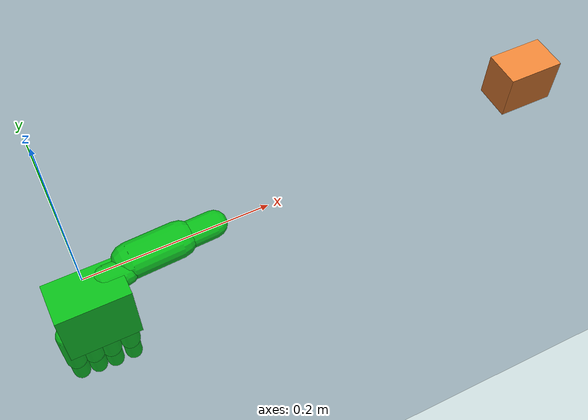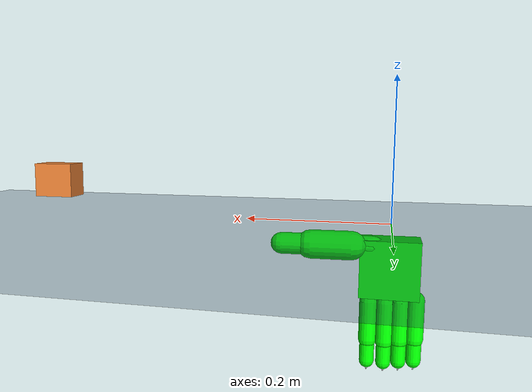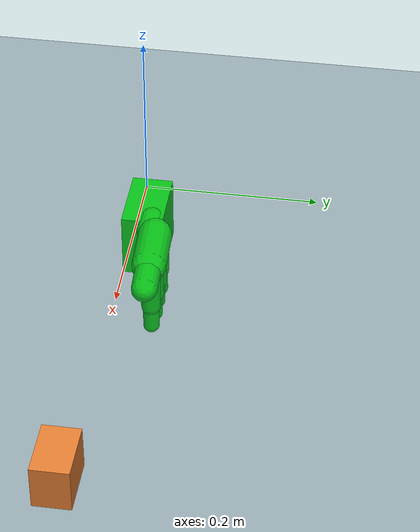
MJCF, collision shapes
<!-- Grasp scene: Shadow Hand + block object (60x40x50 mm, paper default) -->
<mujoco model="dexterous_slip_scene">
  <include file="../../third_party/mujoco_menagerie/shadow_hand/right_hand.xml"/>

  <statistic center="0.3 0 0.4" extent="0.8"/>

  <visual>
    <headlight diffuse="0.6 0.6 0.6" ambient="0.3 0.3 0.3" specular="0 0 0"/>
    <rgba haze="0.15 0.25 0.35 1"/>
    <global azimuth="120" elevation="-20"/>
  </visual>

  <asset>
    <texture type="skybox" builtin="gradient" rgb1="0.3 0.5 0.7" rgb2="0 0 0" width="512" height="3072"/>
    <texture type="2d" name="groundplane" builtin="checker" mark="edge" rgb1="0.2 0.3 0.4" rgb2="0.1 0.2 0.3"
      markrgb="0.8 0.8 0.8" width="300" height="300"/>
    <material name="groundplane" texture="groundplane" texuniform="true" texrepeat="5 5" reflectance="0.2"/>
    <material name="block_mat" rgba="0.9 0.5 0.2 1"/>
  </asset>

  <worldbody>
    <light pos="0 0 1.5" dir="0 0 -1" directional="true"/>
    <geom name="floor" size="0 0 0.05" type="plane" material="groundplane"/>

    <!-- 60x40x50 mm block, mass 0.5 kg (paper mid-range) -->
    <body name="grasp_block" pos="0.5 0 0.05">
      <freejoint name="block_free"/>
      <geom name="block" type="box" size="0.03 0.02 0.025" mass="0.5" material="block_mat"
            friction="1.0 0.005 0.0001" condim="4"/>
    </body>
  </worldbody>
</mujoco>

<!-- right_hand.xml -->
<mujoco model="xhand_right">
  <compiler angle="radian" meshdir="meshes/" />

  <default>
    <!-- disable all contacts and use explicit collision pairs -->
    <geom density="800" condim="1" contype="0" conaffinity="0" />
    <!-- with this setting, the response time is around 1s -->
    <position kp="300" dampratio="1.0" inheritrange="1" />
    <joint damping="0.0" armature="1.0" frictionloss="0.0" />
    <site size="0.005" type="sphere" rgba="1 0 0 1" group="3" />
  </default>

  <asset>
    <texture type="skybox" builtin="gradient" rgb1="1.0 1.0 1.0" rgb2="1.0 1.0 1.0" width="512"
      height="3072" />
    <texture type="2d" name="right_groundplane" builtin="checker" mark="edge" rgb1="0.2 0.3 0.4"
      rgb2="0.1 0.2 0.3"
      markrgb="0.8 0.8 0.8" width="300" height="300" />
    <material name="right_groundplane" texture="right_groundplane" texuniform="true"
      texrepeat="5 5"
      reflectance="0.2" />
    <mesh name="right_hand_link" content_type="model/stl" file="right_hand_link.STL" />
    <mesh name="right_hand_thumb_bend_link" content_type="model/stl"
      file="right_hand_thumb_bend_link.STL" />
    <mesh name="right_hand_thumb_rota_link1" content_type="model/stl"
      file="right_hand_thumb_rota_link1.STL" />
    <mesh name="right_hand_thumb_rota_link2" content_type="model/stl"
      file="right_hand_thumb_rota_link2.STL" />
    <mesh name="right_hand_index_bend_link" content_type="model/stl"
      file="right_hand_index_bend_link.STL" />
    <mesh name="right_hand_index_rota_link1" content_type="model/stl"
      file="right_hand_index_rota_link1.STL" />
    <mesh name="right_hand_index_rota_link2" content_type="model/stl"
      file="right_hand_index_rota_link2.STL" />
    <mesh name="right_hand_mid_link1" content_type="model/stl" file="right_hand_mid_link1.STL" />
    <mesh name="right_hand_mid_link2" content_type="model/stl" file="right_hand_mid_link2.STL" />
    <mesh name="right_hand_ring_link1" content_type="model/stl" file="right_hand_ring_link1.STL" />
    <mesh name="right_hand_ring_link2" content_type="model/stl" file="right_hand_ring_link2.STL" />
    <mesh name="right_hand_pinky_link1" content_type="model/stl" file="right_hand_pinky_link1.STL" />
    <mesh name="right_hand_pinky_link2" content_type="model/stl" file="right_hand_pinky_link2.STL" />
  </asset>

  <worldbody>
    <body name="R_forearm_ty_link">
      <camera name="right_track" pos="-0.868 -0.348 -0.175"
        xyaxes="-0.037 0.999 -0.000 -0.011 -0.000 1.000" />
      <inertial pos="0 0 0" mass="0.1" diaginertia="0.01 0.01 0.01" />
      <joint name="R_forearm_tx_link_joint" pos="0 0 0" axis="1 0 0" type="slide" range="-5 5" />
      <body name="R_forearm_tz_link">
        <inertial pos="0 0 0" mass="0.1" diaginertia="0.01 0.01 0.01" />
        <joint name="R_forearm_ty_link_joint" pos="0 0 0" axis="0 1 0" type="slide" range="-5 5" />
        <body name="R_forearm_roll_link">
          <inertial pos="0 0 0" mass="0.1" diaginertia="0.01 0.01 0.01" />
          <joint name="R_forearm_tz_link_joint" pos="0 0 0" axis="0 0 1" type="slide" range="-5 5" />
          <body name="R_forearm_pitch_link">
            <inertial pos="0 0 0" mass="0.1" diaginertia="0.01 0.01 0.01" />
            <joint name="R_forearm_roll_link_joint" pos="0 0 0" axis="0 0 1" range="-6.2 6.2" />
            <body name="R_forearm_yaw_link">
              <inertial pos="0 0 0" mass="0.1" diaginertia="0.01 0.01 0.01" />
              <joint name="R_forearm_pitch_link_joint" pos="0 0 0" axis="1 0 0" range="-6.2 6.2" />
              <body name="right_hand_link">
                <inertial pos="-0.0071397 0.00342244 -0.0584807"
                  quat="0.688453 0.098553 0.0886255 0.713068" mass="0.530025"
                  diaginertia="0.00067782 0.000491189 0.000335821" />
                <joint name="R_forearm_yaw_link_joint" pos="0 0 0" axis="0 -1 0" range="-6.2 6.2" />
                <geom name="right_hand_link_visual" type="mesh" contype="0" conaffinity="0"
                  group="1" density="0" rgba="0.792157 0.819608 0.933333 1" mesh="right_hand_link" />
                <geom name="collision_hand_right_palm_0" type="box" size="0.04 0.024 0.04"
                  pos="0 0 -0.06"
                  rgba="0 1 0 1" group="3" />
                <site name="right_palm" pos="0 0 0" type="box" size="0.01 0.02 0.03" quat="0 1 1 0" />
                <body name="right_hand_thumb_bend_link" pos="0.0228 0.0095 -0.0305">
                  <inertial pos="0.0145291 -0.000901303 -0.000127926"
                    quat="0.0288921 0.68936 0.0166971 0.72365" mass="0.00985529"
                    diaginertia="1.30647e-06 1.29142e-06 5.40953e-07" />
                  <joint name="right_hand_thumb_bend_joint" pos="0 0 0" axis="0 0 1" range="0 1.83" />
                  <geom name="right_thumb_bend_visual" type="mesh" contype="0" conaffinity="0"
                    group="1" density="0" rgba="0.890196 0.890196 0.913725 1"
                    mesh="right_hand_thumb_bend_link" />
                  <geom name="collision_hand_right_thumb_2" type="capsule" size="0.015"
                    fromto="0 0 0 0.02 0 0"
                    rgba="0 1 0 1" group="3" />
                  <body name="right_hand_thumb_rota_link1" pos="0.028599 0.0083177 0.00178"
                    quat="0.99124 0.130499 0.00265603 0.0201745">
                    <inertial pos="0.0279237 -0.000127603 -0.000272577"
                      quat="-0.0989965 0.703671 0.0850598 0.698435" mass="0.153265"
                      diaginertia="5.62327e-05 4.89801e-05 2.23924e-05" />
                    <joint name="right_hand_thumb_rota_joint1" pos="0 0 0" axis="0 1 0"
                      range="-1.05 1.57" />
                    <geom name="right_thumb_rota1_visual" type="mesh" contype="0" conaffinity="0"
                      group="1" density="0" rgba="1 1 1 1" mesh="right_hand_thumb_rota_link1" />
                    <geom name="collision_hand_right_thumb_1" type="capsule" size="0.02"
                      fromto="0 0 0 0.055 0 0" rgba="0 1 0 1"
                      group="3" />
                    <body name="right_hand_thumb_rota_link2" pos="0.0553 0 0">
                      <inertial pos="0.0224697 -0.000691342 0.00302232"
                        quat="-0.0604029 0.715612 0.0198067 0.695599" mass="0.0374004"
                        diaginertia="9.5465e-06 8.27017e-06 3.92137e-06" />
                      <joint name="right_hand_thumb_rota_joint2" pos="0 0 0" axis="0 1 0"
                        range="-0.175 1.83" />
                      <geom name="right_thumb_rota2_visual" type="mesh" contype="0" conaffinity="0"
                        group="1" density="0" rgba="0.792157 0.819608 0.933333 1"
                        mesh="right_hand_thumb_rota_link2" />
                      <geom name="collision_hand_right_thumb_0" type="capsule" size="0.015"
                        fromto="0 0 0 0.04 0 0"
                        rgba="0 1 0 1"
                        group="3" />

                      <geom size="0.001" pos="0.0504025 0 0" contype="0" conaffinity="0" group="1"
                        density="0" rgba="0.698039 0.698039 0.698039 1" />
                      <site name="right_thumb_tip" pos="0.04 0 -0.012" />
                      <site name="track_hand_right_thumb_tip" pos="0.04 0 -0.012" />
                      <site name="trace_hand_right_thumb_tip" pos="0.04 0 -0.012" />
                    </body>
                  </body>
                </body>
                <body name="right_hand_index_bend_link" pos="0.0265 0.0065 -0.0899">
                  <inertial pos="8.08449e-05 0.000675884 0.00420851"
                    quat="0.999802 -0.0189928 -0.00582288 0.000998418" mass="0.0677836"
                    diaginertia="2.16592e-05 2.09943e-05 3.36803e-06" />
                  <joint name="right_hand_index_bend_joint" pos="0 0 0" axis="0 1 0"
                    range="-0.175 0.175" />
                  <geom name="right_index_bend_visual" type="mesh" contype="0" conaffinity="0"
                    group="1" density="0" rgba="0.439216 0.439216 0.439216 1"
                    mesh="right_hand_index_bend_link" />
                  <body name="right_hand_index_rota_link1" pos="0 0 -0.0178">
                    <inertial pos="-0.00013977 -0.000800517 -0.0356039"
                      quat="0.999865 0.00809183 -0.0131314 0.00566198" mass="0.0630216"
                      diaginertia="2.05301e-05 1.92461e-05 4.135e-06" />
                    <joint name="right_hand_index_joint1" pos="0 0 0" axis="1 0 0" range="0 1.92"
                    />
                    <geom name="right_index_rota1_visual" type="mesh" contype="0" conaffinity="0"
                      group="1" density="0" rgba="1 1 1 1" mesh="right_hand_index_rota_link1" />
                    <geom name="collision_hand_right_index_1" type="capsule" size="0.012"
                      fromto="0 0 0 0 0 -0.055" rgba="0 1 0 1" group="3" />
                    <body name="right_hand_index_rota_link2" pos="0 0 -0.0558">
                      <inertial pos="-0.000338569 1.93676e-05 -0.0231329"
                        quat="0.935384 0.00588977 -0.0260883 0.35262" mass="0.0179923"
                        diaginertia="3.02409e-06 3.01968e-06 9.82703e-07" />
                      <joint name="right_hand_index_joint2" pos="0 0 0" axis="1 0 0" range="0 1.92"
                      />
                      <geom name="right_index_rota2_visual" type="mesh" contype="0" conaffinity="0"
                        group="1" density="0" rgba="0.866667 0.866667 0.890196 1"
                        mesh="right_hand_index_rota_link2" />
                      <geom name="collision_hand_right_index_0" type="capsule" size="0.01"
                        fromto="0 0 0 0 0 -0.03" rgba="0 1 0 1" group="3" />
                      <geom size="0.001" pos="0 0 -0.0425" contype="0" conaffinity="0" group="1"
                        density="0" rgba="0.698039 0.698039 0.698039 1" />
                      <site name="right_index_tip" pos="0 0.004 -0.027" />
                      <site name="track_hand_right_index_tip" pos="0 0.004 -0.027" />
                      <site name="trace_hand_right_index_tip" pos="0 0.004 -0.027" />
                    </body>
                  </body>
                </body>
                <body name="right_hand_mid_link1" pos="0.004 0.0065 -0.1082">
                  <inertial pos="-0.000139769 -0.000800517 -0.0356039"
                    quat="0.999865 0.00809181 -0.0131314 0.00566199" mass="0.0630216"
                    diaginertia="2.05301e-05 1.92461e-05 4.135e-06" />
                  <joint name="right_hand_mid_joint1" pos="0 0 0" axis="1 0 0" range="0 1.92"
                  />
                  <geom name="right_middle_link1_visual" type="mesh" contype="0" conaffinity="0"
                    group="1" density="0" rgba="1 1 1 1" mesh="right_hand_mid_link1" />
                  <geom name="collision_hand_right_middle_1" type="capsule" size="0.012"
                    fromto="0 0 0 0 0 -0.055" rgba="0 1 0 1" group="3" />
                  <body name="right_hand_mid_link2" pos="0 0 -0.0558">
                    <inertial pos="-0.000338569 1.93676e-05 -0.0231329"
                      quat="0.935384 0.00588977 -0.0260883 0.35262" mass="0.0179923"
                      diaginertia="3.02409e-06 3.01968e-06 9.82703e-07" />
                    <joint name="right_hand_mid_joint2" pos="0 0 0" axis="1 0 0" range="0 1.94"
                    />
                    <geom name="right_middle_link2_visual" type="mesh" contype="0" conaffinity="0"
                      group="1" density="0" rgba="0.866667 0.866667 0.890196 1"
                      mesh="right_hand_mid_link2" />
                    <geom name="collision_hand_right_middle_0" type="capsule" size="0.01"
                      fromto="0 0 0 0 0 -0.03" rgba="0 1 0 1" group="3" />
                    <geom size="0.001" pos="0 0 -0.042107" contype="0" conaffinity="0" group="1"
                      density="0" rgba="0.698039 0.698039 0.698039 1" />
                    <site name="right_middle_tip" pos="0 0.004 -0.027" />
                    <site name="track_hand_right_middle_tip" pos="0 0.004 -0.027" />
                    <site name="trace_hand_right_middle_tip" pos="0 0.004 -0.027" />
                  </body>
                </body>
                <body name="right_hand_ring_link1" pos="-0.016 0.0065 -0.1052">
                  <inertial pos="-0.00013977 -0.000800517 -0.0356039"
                    quat="0.999865 0.00809183 -0.0131314 0.00566196" mass="0.0630216"
                    diaginertia="2.05301e-05 1.92461e-05 4.135e-06" />
                  <joint name="right_hand_ring_joint1" pos="0 0 0" axis="1 0 0" range="0 1.92"
                  />
                  <geom name="right_ring_link1_visual" type="mesh" contype="0" conaffinity="0"
                    group="1" density="0" rgba="1 1 1 1" mesh="right_hand_ring_link1" />
                  <geom name="collision_hand_right_ring_1" type="capsule" size="0.012"
                    fromto="0 0 0 0 0 -0.055" rgba="0 1 0 1" group="3" />
                  <body name="right_hand_ring_link2" pos="0 0 -0.0558">
                    <inertial pos="-0.000338573 1.93622e-05 -0.0231328"
                      quat="0.935372 0.00588872 -0.0260882 0.352652" mass="0.0179923"
                      diaginertia="3.02409e-06 3.01968e-06 9.82702e-07" />
                    <joint name="right_hand_ring_joint2" pos="0 0 0" axis="1 0 0" range="0 1.92"
                    />
                    <geom name="right_ring_link2_visual" type="mesh" contype="0" conaffinity="0"
                      group="1" density="0" rgba="0.866667 0.866667 0.890196 1"
                      mesh="right_hand_ring_link2" />
                    <geom name="collision_hand_right_ring_0" type="capsule" size="0.01"
                      fromto="0 0 0 0 0 -0.03" rgba="0 1 0 1" group="3" />
                    <geom size="0.001" pos="0 0 -0.0425" contype="0" conaffinity="0" group="1"
                      density="0" rgba="0.698039 0.698039 0.698039 1" />
                    <site name="right_ring_tip" pos="0 0.004 -0.027" />
                    <site name="track_hand_right_ring_tip" pos="0 0.004 -0.027" />
                    <site name="trace_hand_right_ring_tip" pos="0 0.004 -0.027" />
                  </body>
                </body>
                <body name="right_hand_pinky_link1" pos="-0.036 0.0065 -0.1022">
                  <inertial pos="-0.000139769 -0.000800517 -0.0356039"
                    quat="0.999865 0.00809181 -0.0131314 0.00566204" mass="0.0630216"
                    diaginertia="2.05301e-05 1.92461e-05 4.135e-06" />
                  <joint name="right_hand_pinky_joint1" pos="0 0 0" axis="1 0 0" range="0 1.92"
                  />
                  <geom name="right_pinky_link1_visual" type="mesh" contype="0" conaffinity="0"
                    group="1" density="0" rgba="1 1 1 1" mesh="right_hand_pinky_link1" />
                  <geom name="collision_hand_right_pinky_1" type="capsule" size="0.012"
                    fromto="0 0 0 0 0 -0.055" rgba="0 1 0 1" group="3" />
                  <body name="right_hand_pinky_link2" pos="0 0 -0.0558">
                    <inertial pos="-0.000338569 1.93676e-05 -0.0231329"
                      quat="0.935384 0.00588976 -0.0260883 0.352621" mass="0.0179923"
                      diaginertia="3.02409e-06 3.01968e-06 9.82703e-07" />
                    <joint name="right_hand_pinky_joint2" pos="0 0 0" axis="1 0 0" range="0 1.92"
                    />
                    <geom name="right_pinky_link2_visual" type="mesh" contype="0" conaffinity="0"
                      group="1" density="0" rgba="0.866667 0.866667 0.890196 1"
                      mesh="right_hand_pinky_link2" />
                    <geom name="collision_hand_right_pinky_0" type="capsule" size="0.01"
                      fromto="0 0 0 0 0 -0.03" rgba="0 1 0 1" group="3" />
                    <geom size="0.001" pos="0 0 -0.0425" contype="0" conaffinity="0" group="1"
                      density="0" rgba="0.698039 0.698039 0.698039 1" />
                    <site name="right_pinky_tip" pos="0 0.004 -0.027" />
                    <site name="track_hand_right_pinky_tip" pos="0 0.004 -0.027" />
                    <site name="trace_hand_right_pinky_tip" pos="0 0.004 -0.027" />
                  </body>
                </body>
              </body>
            </body>
          </body>
        </body>
      </body>
    </body>
  </worldbody>

  <actuator>
    <!-- Global position and rotation joints -->
    <position name="R_forearm_tx_position" joint="R_forearm_tx_link_joint" kp="1000" />
    <position name="R_forearm_ty_position" joint="R_forearm_ty_link_joint" kp="1000" />
    <position name="R_forearm_tz_position" joint="R_forearm_tz_link_joint" kp="1000" />
    <position name="R_forearm_roll_position" joint="R_forearm_roll_link_joint" kp="1000" />
    <position name="R_forearm_pitch_position" joint="R_forearm_pitch_link_joint" kp="1000" />
    <position name="R_forearm_yaw_position" joint="R_forearm_yaw_link_joint" kp="1000" />

    <!-- Thumb joints -->
    <position name="right_thumb_bend_position" joint="right_hand_thumb_bend_joint" />
    <position name="right_thumb_rota1_position" joint="right_hand_thumb_rota_joint1" />
    <position name="right_thumb_rota2_position" joint="right_hand_thumb_rota_joint2" />

    <!-- Index joints -->
    <position name="right_index_bend_position" joint="right_hand_index_bend_joint" />
    <position name="right_index_joint1_position" joint="right_hand_index_joint1" />
    <position name="right_index_joint2_position" joint="right_hand_index_joint2" />

    <!-- Middle joints -->
    <position name="right_middle_joint1_position" joint="right_hand_mid_joint1" />
    <position name="right_middle_joint2_position" joint="right_hand_mid_joint2" />

    <!-- Ring joints -->
    <position name="right_ring_joint1_position" joint="right_hand_ring_joint1" />
    <position name="right_ring_joint2_position" joint="right_hand_ring_joint2" />

    <!-- Pinky joints -->
    <position name="right_pinky_joint1_position" joint="right_hand_pinky_joint1" />
    <position name="right_pinky_joint2_position" joint="right_hand_pinky_joint2" />
  </actuator>
</mujoco>
